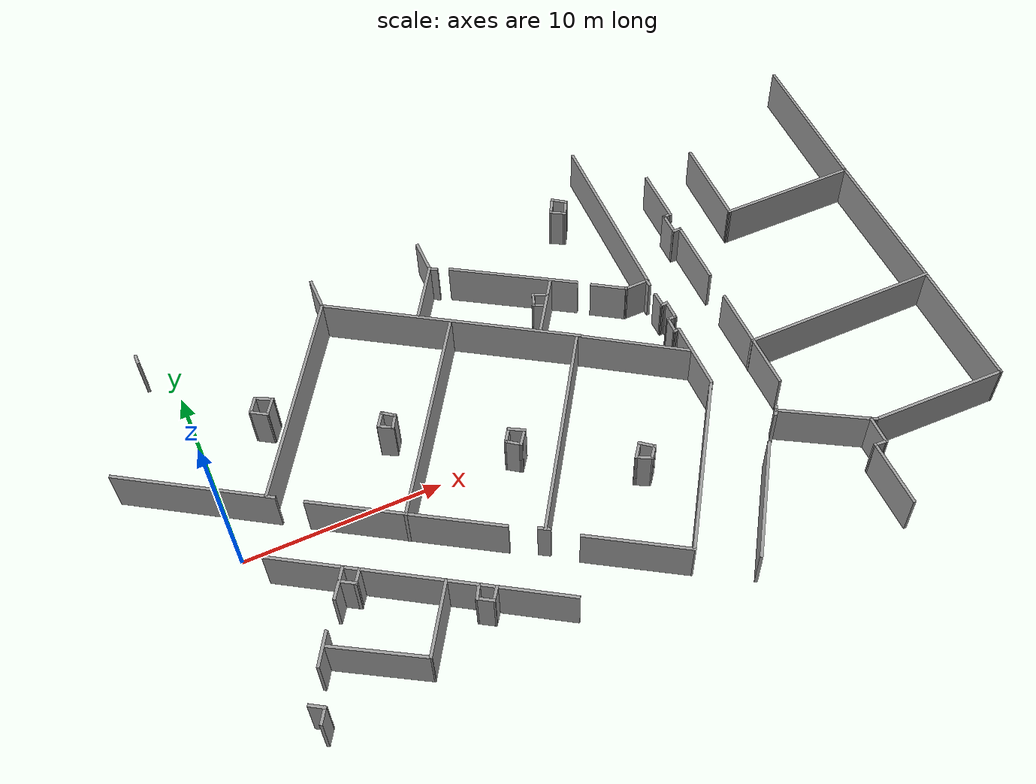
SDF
<sdf version="1.7">
 <model name="HopperFloorGround_Full">
  <pose>0.395792 0.11413 0 0 -0 0</pose>
  <link name="Wall_166">
   <collision name="Wall_166_Collision">
    <geometry><box><size>14.443 0.15 2.5</size></box></geometry>
    <pose>0 0 1.25 0 -0 0</pose>
   </collision>
   <visual name="Wall_166_Visual">
    <pose>0 0 1.25 0 -0 0</pose>
    <geometry><box><size>14.443 0.15 2.5</size></box></geometry>
    <material>
     <script><uri>file://media/materials/scripts/gazebo.material</uri><name>Gazebo/Grey</name></script>
     <ambient>1 1 1 1</ambient>
    </material>
    <meta><layer>0</layer></meta>
   </visual>
   <pose>6.60464 -5.5119 0 0 -0 -0.570014</pose>
  </link>
  <link name="Wall_168">
   <collision name="Wall_168_Collision">
    <geometry><box><size>1.67737 0.15 2.5</size></box></geometry>
    <pose>0 0 1.25 0 -0 0</pose>
   </collision>
   <visual name="Wall_168_Visual">
    <pose>0 0 1.25 0 -0 0</pose>
    <geometry><box><size>1.67737 0.15 2.5</size></box></geometry>
    <material>
     <script><uri>file://media/materials/scripts/gazebo.material</uri><name>Gazebo/Grey</name></script>
     <ambient>1 1 1 1</ambient>
    </material>
    <meta><layer>0</layer></meta>
   </visual>
   <pose>3.20221 -4.27331 0 0 -0 -2.14213</pose>
  </link>
  <link name="Wall_170">
   <collision name="Wall_170_Collision">
    <geometry><box><size>0.850577 0.15 2.5</size></box></geometry>
    <pose>0 0 1.25 0 -0 0</pose>
   </collision>
   <visual name="Wall_170_Visual">
    <pose>0 0 1.25 0 -0 0</pose>
    <geometry><box><size>0.850577 0.15 2.5</size></box></geometry>
    <material>
     <script><uri>file://media/materials/scripts/gazebo.material</uri><name>Gazebo/Grey</name></script>
     <ambient>1 1 1 1</ambient>
    </material>
    <meta><layer>0</layer></meta>
   </visual>
   <pose>4.09227 -4.31899 0 0 -0 -2.16423</pose>
  </link>
  <link name="Wall_171">
   <collision name="Wall_171_Collision">
    <geometry><box><size>0.905243 0.15 2.5</size></box></geometry>
    <pose>0 0 1.25 0 -0 0</pose>
   </collision>
   <visual name="Wall_171_Visual">
    <pose>0 0 1.25 0 -0 0</pose>
    <geometry><box><size>0.905243 0.15 2.5</size></box></geometry>
    <material>
     <script><uri>file://media/materials/scripts/gazebo.material</uri><name>Gazebo/Grey</name></script>
     <ambient>1 1 1 1</ambient>
    </material>
    <meta><layer>0</layer></meta>
   </visual>
   <pose>3.59044 -4.4109 0 0 -0 2.58813</pose>
  </link>
  <link name="Wall_176">
   <collision name="Wall_176_Collision">
    <geometry><box><size>3.85464 0.15 2.5</size></box></geometry>
    <pose>0 0 1.25 0 -0 0</pose>
   </collision>
   <visual name="Wall_176_Visual">
    <pose>0 0 1.25 0 -0 0</pose>
    <geometry><box><size>3.85464 0.15 2.5</size></box></geometry>
    <material>
     <script><uri>file://media/materials/scripts/gazebo.material</uri><name>Gazebo/Grey</name></script>
     <ambient>1 1 1 1</ambient>
    </material>
    <meta><layer>0</layer></meta>
   </visual>
   <pose>6.61117 -7.72263 0 0 -0 -2.13246</pose>
  </link>
  <link name="Wall_177">
   <collision name="Wall_177_Collision">
    <geometry><box><size>4.87161 0.15 2.5</size></box></geometry>
    <pose>0 0 1.25 0 -0 0</pose>
   </collision>
   <visual name="Wall_177_Visual">
    <pose>0 0 1.25 0 -0 0</pose>
    <geometry><box><size>4.87161 0.15 2.5</size></box></geometry>
    <material>
     <script><uri>file://media/materials/scripts/gazebo.material</uri><name>Gazebo/Grey</name></script>
     <ambient>1 1 1 1</ambient>
    </material>
    <meta><layer>0</layer></meta>
   </visual>
   <pose>3.60568 -8.06677 0 0 -0 2.59673</pose>
  </link>
  <link name="Wall_179">
   <collision name="Wall_179_Collision">
    <geometry><box><size>1.77632 0.15 2.5</size></box></geometry>
    <pose>0 0 1.25 0 -0 0</pose>
   </collision>
   <visual name="Wall_179_Visual">
    <pose>0 0 1.25 0 -0 0</pose>
    <geometry><box><size>1.77632 0.15 2.5</size></box></geometry>
    <material>
     <script><uri>file://media/materials/scripts/gazebo.material</uri><name>Gazebo/Grey</name></script>
     <ambient>1 1 1 1</ambient>
    </material>
    <meta><layer>0</layer></meta>
   </visual>
   <pose>1.50261 -6.95788 0 0 -0 -2.11444</pose>
  </link>
  <link name="Wall_184">
   <collision name="Wall_184_Collision">
    <geometry><box><size>0.83743 0.15 2.5</size></box></geometry>
    <pose>0 0 1.25 0 -0 0</pose>
   </collision>
   <visual name="Wall_184_Visual">
    <pose>0 0 1.25 0 -0 0</pose>
    <geometry><box><size>0.83743 0.15 2.5</size></box></geometry>
    <material>
     <script><uri>file://media/materials/scripts/gazebo.material</uri><name>Gazebo/Grey</name></script>
     <ambient>1 1 1 1</ambient>
    </material>
    <meta><layer>0</layer></meta>
   </visual>
   <pose>0.439595 -9.35156 0 0 -0 -0.563316</pose>
  </link>
  <link name="Wall_185">
   <collision name="Wall_185_Collision">
    <geometry><box><size>0.871469 0.15 2.5</size></box></geometry>
    <pose>0 0 1.25 0 -0 0</pose>
   </collision>
   <visual name="Wall_185_Visual">
    <pose>0 0 1.25 0 -0 0</pose>
    <geometry><box><size>0.871469 0.15 2.5</size></box></geometry>
    <material>
     <script><uri>file://media/materials/scripts/gazebo.material</uri><name>Gazebo/Grey</name></script>
     <ambient>1 1 1 1</ambient>
    </material>
    <meta><layer>0</layer></meta>
   </visual>
   <pose>0.539013 -9.84101 0 0 -0 -2.1294</pose>
  </link>
  <link name="Wall_200">
   <collision name="Wall_200_Collision">
    <geometry><box><size>0.835083 0.15 2.5</size></box></geometry>
    <pose>0 0 1.25 0 -0 0</pose>
   </collision>
   <visual name="Wall_200_Visual">
    <pose>0 0 1.25 0 -0 0</pose>
    <geometry><box><size>0.835083 0.15 2.5</size></box></geometry>
    <material>
     <script><uri>file://media/materials/scripts/gazebo.material</uri><name>Gazebo/Grey</name></script>
     <ambient>1 1 1 1</ambient>
    </material>
    <meta><layer>0</layer></meta>
   </visual>
   <pose>8.6848 -7.24916 0 0 -0 -2.08039</pose>
  </link>
  <link name="Wall_201">
   <collision name="Wall_201_Collision">
    <geometry><box><size>0.901419 0.15 2.5</size></box></geometry>
    <pose>0 0 1.25 0 -0 0</pose>
   </collision>
   <visual name="Wall_201_Visual">
    <pose>0 0 1.25 0 -0 0</pose>
    <geometry><box><size>0.901419 0.15 2.5</size></box></geometry>
    <material>
     <script><uri>file://media/materials/scripts/gazebo.material</uri><name>Gazebo/Grey</name></script>
     <ambient>1 1 1 1</ambient>
    </material>
    <meta><layer>0</layer></meta>
   </visual>
   <pose>8.83431 -7.75046 0 0 -0 -0.568525</pose>
  </link>
  <link name="Wall_202">
   <collision name="Wall_202_Collision">
    <geometry><box><size>0.833048 0.15 2.5</size></box></geometry>
    <pose>0 0 1.25 0 -0 0</pose>
   </collision>
   <visual name="Wall_202_Visual">
    <pose>0 0 1.25 0 -0 0</pose>
    <geometry><box><size>0.833048 0.15 2.5</size></box></geometry>
    <material>
     <script><uri>file://media/materials/scripts/gazebo.material</uri><name>Gazebo/Grey</name></script>
     <ambient>1 1 1 1</ambient>
    </material>
    <meta><layer>0</layer></meta>
   </visual>
   <pose>9.3444 -7.6713 0 0 -0 0.968509</pose>
  </link>
  <link name="Wall_266">
   <collision name="Wall_266_Collision">
    <geometry><box><size>0.825407 0.15 2.5</size></box></geometry>
    <pose>0 0 1.25 0 -0 0</pose>
   </collision>
   <visual name="Wall_266_Visual">
    <pose>0 0 1.25 0 -0 0</pose>
    <geometry><box><size>0.825407 0.15 2.5</size></box></geometry>
    <material>
     <script><uri>file://media/materials/scripts/gazebo.material</uri><name>Gazebo/Grey</name></script>
     <ambient>1 1 1 1</ambient>
    </material>
    <meta><layer>0</layer></meta>
   </visual>
   <pose>8.02918 2.5641 0 0 -0 -0.524796</pose>
  </link>
  <link name="Wall_267">
   <collision name="Wall_267_Collision">
    <geometry><box><size>0.825407 0.15 2.5</size></box></geometry>
    <pose>0 0 1.25 0 -0 0</pose>
   </collision>
   <visual name="Wall_267_Visual">
    <pose>0 0 1.25 0 -0 0</pose>
    <geometry><box><size>0.825407 0.15 2.5</size></box></geometry>
    <material>
     <script><uri>file://media/materials/scripts/gazebo.material</uri><name>Gazebo/Grey</name></script>
     <ambient>1 1 1 1</ambient>
    </material>
    <meta><layer>0</layer></meta>
   </visual>
   <pose>8.49064 2.68716 0 0 -0 1.046</pose>
  </link>
  <link name="Wall_268">
   <collision name="Wall_268_Collision">
    <geometry><box><size>0.808377 0.15 2.5</size></box></geometry>
    <pose>0 0 1.25 0 -0 0</pose>
   </collision>
   <visual name="Wall_268_Visual">
    <pose>0 0 1.25 0 -0 0</pose>
    <geometry><box><size>0.808377 0.15 2.5</size></box></geometry>
    <material>
     <script><uri>file://media/materials/scripts/gazebo.material</uri><name>Gazebo/Grey</name></script>
     <ambient>1 1 1 1</ambient>
    </material>
    <meta><layer>0</layer></meta>
   </visual>
   <pose>8.39835 3.17938 0 0 -0 2.48875</pose>
  </link>
  <link name="Wall_269">
   <collision name="Wall_269_Collision">
    <geometry><box><size>0.883834 0.15 2.5</size></box></geometry>
    <pose>0 0 1.25 0 -0 0</pose>
   </collision>
   <visual name="Wall_269_Visual">
    <pose>0 0 1.25 0 -0 0</pose>
    <geometry><box><size>0.883834 0.15 2.5</size></box></geometry>
    <material>
     <script><uri>file://media/materials/scripts/gazebo.material</uri><name>Gazebo/Grey</name></script>
     <ambient>1 1 1 1</ambient>
    </material>
    <meta><layer>0</layer></meta>
   </visual>
   <pose>7.93689 3.0717 0 0 -0 -2.14717</pose>
  </link>
  <link name="Wall_271">
   <collision name="Wall_271_Collision">
    <geometry><box><size>9.55491 0.15 2.5</size></box></geometry>
    <pose>0 0 1.25 0 -0 0</pose>
   </collision>
   <visual name="Wall_271_Visual">
    <pose>0 0 1.25 0 -0 0</pose>
    <geometry><box><size>9.55491 0.15 2.5</size></box></geometry>
    <material>
     <script><uri>file://media/materials/scripts/gazebo.material</uri><name>Gazebo/Grey</name></script>
     <ambient>1 1 1 1</ambient>
    </material>
    <meta><layer>0</layer></meta>
   </visual>
   <pose>7.18317 -2.25046 0 0 -0 -0.566227</pose>
  </link>
  <link name="Wall_273">
   <collision name="Wall_273_Collision">
    <geometry><box><size>0.619591 0.15 2.5</size></box></geometry>
    <pose>0 0 1.25 0 -0 0</pose>
   </collision>
   <visual name="Wall_273_Visual">
    <pose>0 0 1.25 0 -0 0</pose>
    <geometry><box><size>0.619591 0.15 2.5</size></box></geometry>
    <material>
     <script><uri>file://media/materials/scripts/gazebo.material</uri><name>Gazebo/Grey</name></script>
     <ambient>1 1 1 1</ambient>
    </material>
    <meta><layer>0</layer></meta>
   </visual>
   <pose>12.6438 -5.60373 0 0 -0 -0.551655</pose>
  </link>
  <link name="Wall_276">
   <collision name="Wall_276_Collision">
    <geometry><box><size>0.883834 0.15 2.5</size></box></geometry>
    <pose>0 0 1.25 0 -0 0</pose>
   </collision>
   <visual name="Wall_276_Visual">
    <pose>0 0 1.25 0 -0 0</pose>
    <geometry><box><size>0.883834 0.15 2.5</size></box></geometry>
    <material>
     <script><uri>file://media/materials/scripts/gazebo.material</uri><name>Gazebo/Grey</name></script>
     <ambient>1 1 1 1</ambient>
    </material>
    <meta><layer>0</layer></meta>
   </visual>
   <pose>13.1094 -0.277168 0 0 -0 -2.14717</pose>
  </link>
  <link name="Wall_277">
   <collision name="Wall_277_Collision">
    <geometry><box><size>0.876055 0.15 2.5</size></box></geometry>
    <pose>0 0 1.25 0 -0 0</pose>
   </collision>
   <visual name="Wall_277_Visual">
    <pose>0 0 1.25 0 -0 0</pose>
    <geometry><box><size>0.876055 0.15 2.5</size></box></geometry>
    <material>
     <script><uri>file://media/materials/scripts/gazebo.material</uri><name>Gazebo/Grey</name></script>
     <ambient>1 1 1 1</ambient>
    </material>
    <meta><layer>0</layer></meta>
   </visual>
   <pose>13.2017 -0.800155 0 0 -0 -0.635027</pose>
  </link>
  <link name="Wall_278">
   <collision name="Wall_278_Collision">
    <geometry><box><size>0.943924 0.15 2.5</size></box></geometry>
    <pose>0 0 1.25 0 -0 0</pose>
   </collision>
   <visual name="Wall_278_Visual">
    <pose>0 0 1.25 0 -0 0</pose>
    <geometry><box><size>0.943924 0.15 2.5</size></box></geometry>
    <material>
     <script><uri>file://media/materials/scripts/gazebo.material</uri><name>Gazebo/Grey</name></script>
     <ambient>1 1 1 1</ambient>
    </material>
    <meta><layer>0</layer></meta>
   </visual>
   <pose>13.7247 -0.692481 0 0 -0 0.950547</pose>
  </link>
  <link name="Wall_279">
   <collision name="Wall_279_Collision">
    <geometry><box><size>0.89408 0.15 2.5</size></box></geometry>
    <pose>0 0 1.25 0 -0 0</pose>
   </collision>
   <visual name="Wall_279_Visual">
    <pose>0 0 1.25 0 -0 0</pose>
    <geometry><box><size>0.89408 0.15 2.5</size></box></geometry>
    <material>
     <script><uri>file://media/materials/scripts/gazebo.material</uri><name>Gazebo/Grey</name></script>
     <ambient>1 1 1 1</ambient>
    </material>
    <meta><layer>0</layer></meta>
   </visual>
   <pose>13.6324 -0.184876 0 0 -0 2.62245</pose>
  </link>
  <link name="Wall_281">
   <collision name="Wall_281_Collision">
    <geometry><box><size>0.876055 0.15 2.5</size></box></geometry>
    <pose>0 0 1.25 0 -0 0</pose>
   </collision>
   <visual name="Wall_281_Visual">
    <pose>0 0 1.25 0 -0 0</pose>
    <geometry><box><size>0.876055 0.15 2.5</size></box></geometry>
    <material>
     <script><uri>file://media/materials/scripts/gazebo.material</uri><name>Gazebo/Grey</name></script>
     <ambient>1 1 1 1</ambient>
    </material>
    <meta><layer>0</layer></meta>
   </visual>
   <pose>18.3547 -3.64582 0 0 -0 -2.20582</pose>
  </link>
  <link name="Wall_282">
   <collision name="Wall_282_Collision">
    <geometry><box><size>0.879307 0.15 2.5</size></box></geometry>
    <pose>0 0 1.25 0 -0 0</pose>
   </collision>
   <visual name="Wall_282_Visual">
    <pose>0 0 1.25 0 -0 0</pose>
    <geometry><box><size>0.879307 0.15 2.5</size></box></geometry>
    <material>
     <script><uri>file://media/materials/scripts/gazebo.material</uri><name>Gazebo/Grey</name></script>
     <ambient>1 1 1 1</ambient>
    </material>
    <meta><layer>0</layer></meta>
   </visual>
   <pose>18.4624 -4.10728 0 0 -0 -0.482513</pose>
  </link>
  <link name="Wall_283">
   <collision name="Wall_283_Collision">
    <geometry><box><size>0.808377 0.15 2.5</size></box></geometry>
    <pose>0 0 1.25 0 -0 0</pose>
   </collision>
   <visual name="Wall_283_Visual">
    <pose>0 0 1.25 0 -0 0</pose>
    <geometry><box><size>0.808377 0.15 2.5</size></box></geometry>
    <material>
     <script><uri>file://media/materials/scripts/gazebo.material</uri><name>Gazebo/Grey</name></script>
     <ambient>1 1 1 1</ambient>
    </material>
    <meta><layer>0</layer></meta>
   </visual>
   <pose>18.9854 -4.01499 0 0 -0 0.91795</pose>
  </link>
  <link name="Wall_284">
   <collision name="Wall_284_Collision">
    <geometry><box><size>0.894716 0.15 2.5</size></box></geometry>
    <pose>0 0 1.25 0 -0 0</pose>
   </collision>
   <visual name="Wall_284_Visual">
    <pose>0 0 1.25 0 -0 0</pose>
    <geometry><box><size>0.894716 0.15 2.5</size></box></geometry>
    <material>
     <script><uri>file://media/materials/scripts/gazebo.material</uri><name>Gazebo/Grey</name></script>
     <ambient>1 1 1 1</ambient>
    </material>
    <meta><layer>0</layer></meta>
   </visual>
   <pose>18.8931 -3.52276 0 0 -0 2.4733</pose>
  </link>
  <link name="Wall_341">
   <collision name="Wall_341_Collision">
    <geometry><box><size>0.556853 0.15 2.5</size></box></geometry>
    <pose>0 0 1.25 0 -0 0</pose>
   </collision>
   <visual name="Wall_341_Visual">
    <pose>0 0 1.25 0 -0 0</pose>
    <geometry><box><size>0.556853 0.15 2.5</size></box></geometry>
    <material>
     <script><uri>file://media/materials/scripts/gazebo.material</uri><name>Gazebo/Grey</name></script>
     <ambient>1 1 1 1</ambient>
    </material>
    <meta><layer>0</layer></meta>
   </visual>
   <pose>-1.7167 11.358 0 0 -0 -1.5708</pose>
  </link>
  <link name="Wall_351">
   <collision name="Wall_351_Collision">
    <geometry><box><size>1.79826 0.15 2.5</size></box></geometry>
    <pose>0 0 1.25 0 -0 0</pose>
   </collision>
   <visual name="Wall_351_Visual">
    <pose>0 0 1.25 0 -0 0</pose>
    <geometry><box><size>1.79826 0.15 2.5</size></box></geometry>
    <material>
     <script><uri>file://media/materials/scripts/gazebo.material</uri><name>Gazebo/Grey</name></script>
     <ambient>1 1 1 1</ambient>
    </material>
    <meta><layer>0</layer></meta>
   </visual>
   <pose>7.66126 11.5106 0 0 -0 -1.5708</pose>
  </link>
  <link name="Wall_352">
   <collision name="Wall_352_Collision">
    <geometry><box><size>11.2837 0.15 2.5</size></box></geometry>
    <pose>0 0 1.25 0 -0 0</pose>
   </collision>
   <visual name="Wall_352_Visual">
    <pose>0 0 1.25 0 -0 0</pose>
    <geometry><box><size>11.2837 0.15 2.5</size></box></geometry>
    <material>
     <script><uri>file://media/materials/scripts/gazebo.material</uri><name>Gazebo/Grey</name></script>
     <ambient>1 1 1 1</ambient>
    </material>
    <meta><layer>0</layer></meta>
   </visual>
   <pose>4.66072 5.9977 0 0 -0 -2.14005</pose>
  </link>
  <link name="Wall_354">
   <collision name="Wall_354_Collision">
    <geometry><box><size>7.94811 0.15 2.5</size></box></geometry>
    <pose>0 0 1.25 0 -0 0</pose>
   </collision>
   <visual name="Wall_354_Visual">
    <pose>0 0 1.25 0 -0 0</pose>
    <geometry><box><size>7.94811 0.15 2.5</size></box></geometry>
    <material>
     <script><uri>file://media/materials/scripts/gazebo.material</uri><name>Gazebo/Grey</name></script>
     <ambient>1 1 1 1</ambient>
    </material>
    <meta><layer>0</layer></meta>
   </visual>
   <pose>-1.30985 3.22092 0 0 -0 -0.573532</pose>
  </link>
  <link name="Wall_356">
   <collision name="Wall_356_Collision">
    <geometry><box><size>0.945707 0.15 2.5</size></box></geometry>
    <pose>0 0 1.25 0 -0 0</pose>
   </collision>
   <visual name="Wall_356_Visual">
    <pose>0 0 1.25 0 -0 0</pose>
    <geometry><box><size>0.945707 0.15 2.5</size></box></geometry>
    <material>
     <script><uri>file://media/materials/scripts/gazebo.material</uri><name>Gazebo/Grey</name></script>
     <ambient>1 1 1 1</ambient>
    </material>
    <meta><layer>0</layer></meta>
   </visual>
   <pose>2.6468 6.3842 0 0 -0 -2.13753</pose>
  </link>
  <link name="Wall_357">
   <collision name="Wall_357_Collision">
    <geometry><box><size>0.973815 0.15 2.5</size></box></geometry>
    <pose>0 0 1.25 0 -0 0</pose>
   </collision>
   <visual name="Wall_357_Visual">
    <pose>0 0 1.25 0 -0 0</pose>
    <geometry><box><size>0.973815 0.15 2.5</size></box></geometry>
    <material>
     <script><uri>file://media/materials/scripts/gazebo.material</uri><name>Gazebo/Grey</name></script>
     <ambient>1 1 1 1</ambient>
    </material>
    <meta><layer>0</layer></meta>
   </visual>
   <pose>2.77902 5.82478 0 0 -0 -0.574305</pose>
  </link>
  <link name="Wall_358">
   <collision name="Wall_358_Collision">
    <geometry><box><size>1.03016 0.15 2.5</size></box></geometry>
    <pose>0 0 1.25 0 -0 0</pose>
   </collision>
   <visual name="Wall_358_Visual">
    <pose>0 0 1.25 0 -0 0</pose>
    <geometry><box><size>1.03016 0.15 2.5</size></box></geometry>
    <material>
     <script><uri>file://media/materials/scripts/gazebo.material</uri><name>Gazebo/Grey</name></script>
     <ambient>1 1 1 1</ambient>
    </material>
    <meta><layer>0</layer></meta>
   </visual>
   <pose>3.36896 5.96718 0 0 -0 0.982794</pose>
  </link>
  <link name="Wall_359">
   <collision name="Wall_359_Collision">
    <geometry><box><size>0.996117 0.15 2.5</size></box></geometry>
    <pose>0 0 1.25 0 -0 0</pose>
   </collision>
   <visual name="Wall_359_Visual">
    <pose>0 0 1.25 0 -0 0</pose>
    <geometry><box><size>0.996117 0.15 2.5</size></box></geometry>
    <material>
     <script><uri>file://media/materials/scripts/gazebo.material</uri><name>Gazebo/Grey</name></script>
     <ambient>1 1 1 1</ambient>
    </material>
    <meta><layer>0</layer></meta>
   </visual>
   <pose>3.23673 6.5266 0 0 -0 2.66719</pose>
  </link>
  <link name="Wall_365">
   <collision name="Wall_365_Collision">
    <geometry><box><size>13.2638 0.15 2.5</size></box></geometry>
    <pose>0 0 1.25 0 -0 0</pose>
   </collision>
   <visual name="Wall_365_Visual">
    <pose>0 0 1.25 0 -0 0</pose>
    <geometry><box><size>13.2638 0.15 2.5</size></box></geometry>
    <material>
     <script><uri>file://media/materials/scripts/gazebo.material</uri><name>Gazebo/Grey</name></script>
     <ambient>1 1 1 1</ambient>
    </material>
    <meta><layer>0</layer></meta>
   </visual>
   <pose>13.1741 7.13688 0 0 -0 -0.572083</pose>
  </link>
  <link name="Wall_367">
   <collision name="Wall_367_Collision">
    <geometry><box><size>1.83844 0.15 2.5</size></box></geometry>
    <pose>0 0 1.25 0 -0 0</pose>
   </collision>
   <visual name="Wall_367_Visual">
    <pose>0 0 1.25 0 -0 0</pose>
    <geometry><box><size>1.83844 0.15 2.5</size></box></geometry>
    <material>
     <script><uri>file://media/materials/scripts/gazebo.material</uri><name>Gazebo/Grey</name></script>
     <ambient>1 1 1 1</ambient>
    </material>
    <meta><layer>0</layer></meta>
   </visual>
   <pose>13.4793 11.5106 0 0 -0 -1.5708</pose>
  </link>
  <link name="Wall_368">
   <collision name="Wall_368_Collision">
    <geometry><box><size>3.20336 0.15 2.5</size></box></geometry>
    <pose>0 0 1.25 0 -0 0</pose>
   </collision>
   <visual name="Wall_368_Visual">
    <pose>0 0 1.25 0 -0 0</pose>
    <geometry><box><size>3.20336 0.15 2.5</size></box></geometry>
    <material>
     <script><uri>file://media/materials/scripts/gazebo.material</uri><name>Gazebo/Grey</name></script>
     <ambient>1 1 1 1</ambient>
    </material>
    <meta><layer>0</layer></meta>
   </visual>
   <pose>12.6656 9.37458 0 0 -0 -2.13293</pose>
  </link>
  <link name="Wall_370">
   <collision name="Wall_370_Collision">
    <geometry><box><size>0.516732 0.15 2.5</size></box></geometry>
    <pose>0 0 1.25 0 -0 0</pose>
   </collision>
   <visual name="Wall_370_Visual">
    <pose>0 0 1.25 0 -0 0</pose>
    <geometry><box><size>0.516732 0.15 2.5</size></box></geometry>
    <material>
     <script><uri>file://media/materials/scripts/gazebo.material</uri><name>Gazebo/Grey</name></script>
     <ambient>1 1 1 1</ambient>
    </material>
    <meta><layer>0</layer></meta>
   </visual>
   <pose>13.6318 10.5646 0 0 -0 -0.588003</pose>
  </link>
  <link name="Wall_372">
   <collision name="Wall_372_Collision">
    <geometry><box><size>6.68582 0.15 2.5</size></box></geometry>
    <pose>0 0 1.25 0 -0 0</pose>
   </collision>
   <visual name="Wall_372_Visual">
    <pose>0 0 1.25 0 -0 0</pose>
    <geometry><box><size>6.68582 0.15 2.5</size></box></geometry>
    <material>
     <script><uri>file://media/materials/scripts/gazebo.material</uri><name>Gazebo/Grey</name></script>
     <ambient>1 1 1 1</ambient>
    </material>
    <meta><layer>0</layer></meta>
   </visual>
   <pose>17.202 8.43881 0 0 -0 -0.561239</pose>
  </link>
  <link name="Wall_374">
   <collision name="Wall_374_Collision">
    <geometry><box><size>3.38301 0.15 2.5</size></box></geometry>
    <pose>0 0 1.25 0 -0 0</pose>
   </collision>
   <visual name="Wall_374_Visual">
    <pose>0 0 1.25 0 -0 0</pose>
    <geometry><box><size>3.38301 0.15 2.5</size></box></geometry>
    <material>
     <script><uri>file://media/materials/scripts/gazebo.material</uri><name>Gazebo/Grey</name></script>
     <ambient>1 1 1 1</ambient>
    </material>
    <meta><layer>0</layer></meta>
   </visual>
   <pose>17.9445 6.05872 0 0 -0 0.99152</pose>
  </link>
  <link name="Wall_376">
   <collision name="Wall_376_Collision">
    <geometry><box><size>0.832313 0.15 2.5</size></box></geometry>
    <pose>0 0 1.25 0 -0 0</pose>
   </collision>
   <visual name="Wall_376_Visual">
    <pose>0 0 1.25 0 -0 0</pose>
    <geometry><box><size>0.832313 0.15 2.5</size></box></geometry>
    <material>
     <script><uri>file://media/materials/scripts/gazebo.material</uri><name>Gazebo/Grey</name></script>
     <ambient>1 1 1 1</ambient>
    </material>
    <meta><layer>0</layer></meta>
   </visual>
   <pose>17.9546 6.75037 0 0 -0 2.67794</pose>
  </link>
  <link name="Wall_377">
   <collision name="Wall_377_Collision">
    <geometry><box><size>0.815115 0.15 2.5</size></box></geometry>
    <pose>0 0 1.25 0 -0 0</pose>
   </collision>
   <visual name="Wall_377_Visual">
    <pose>0 0 1.25 0 -0 0</pose>
    <geometry><box><size>0.815115 0.15 2.5</size></box></geometry>
    <material>
     <script><uri>file://media/materials/scripts/gazebo.material</uri><name>Gazebo/Grey</name></script>
     <ambient>1 1 1 1</ambient>
    </material>
    <meta><layer>0</layer></meta>
   </visual>
   <pose>17.5173 6.5978 0 0 -0 -1.9797</pose>
  </link>
  <link name="Wall_378">
   <collision name="Wall_378_Collision">
    <geometry><box><size>0.705246 0.15 2.5</size></box></geometry>
    <pose>0 0 1.25 0 -0 0</pose>
   </collision>
   <visual name="Wall_378_Visual">
    <pose>0 0 1.25 0 -0 0</pose>
    <geometry><box><size>0.705246 0.15 2.5</size></box></geometry>
    <material>
     <script><uri>file://media/materials/scripts/gazebo.material</uri><name>Gazebo/Grey</name></script>
     <ambient>1 1 1 1</ambient>
    </material>
    <meta><layer>0</layer></meta>
   </visual>
   <pose>17.6292 6.16044 0 0 -0 -0.496423</pose>
  </link>
  <link name="Wall_380">
   <collision name="Wall_380_Collision">
    <geometry><box><size>1.91618 0.15 2.5</size></box></geometry>
    <pose>0 0 1.25 0 -0 0</pose>
   </collision>
   <visual name="Wall_380_Visual">
    <pose>0 0 1.25 0 -0 0</pose>
    <geometry><box><size>1.91618 0.15 2.5</size></box></geometry>
    <material>
     <script><uri>file://media/materials/scripts/gazebo.material</uri><name>Gazebo/Grey</name></script>
     <ambient>1 1 1 1</ambient>
    </material>
    <meta><layer>0</layer></meta>
   </visual>
   <pose>21.362 5.75358 0 0 -0 -0.57203</pose>
  </link>
  <link name="Wall_381">
   <collision name="Wall_381_Collision">
    <geometry><box><size>1.33005 0.15 2.5</size></box></geometry>
    <pose>0 0 1.25 0 -0 0</pose>
   </collision>
   <visual name="Wall_381_Visual">
    <pose>0 0 1.25 0 -0 0</pose>
    <geometry><box><size>1.33005 0.15 2.5</size></box></geometry>
    <material>
     <script><uri>file://media/materials/scripts/gazebo.material</uri><name>Gazebo/Grey</name></script>
     <ambient>1 1 1 1</ambient>
    </material>
    <meta><layer>0</layer></meta>
   </visual>
   <pose>22.6945 5.2857 0 0 -0 0.01724</pose>
  </link>
  <link name="Wall_382">
   <collision name="Wall_382_Collision">
    <geometry><box><size>0.435523 0.15 2.5</size></box></geometry>
    <pose>0 0 1.25 0 -0 0</pose>
   </collision>
   <visual name="Wall_382_Visual">
    <pose>0 0 1.25 0 -0 0</pose>
    <geometry><box><size>0.435523 0.15 2.5</size></box></geometry>
    <material>
     <script><uri>file://media/materials/scripts/gazebo.material</uri><name>Gazebo/Grey</name></script>
     <ambient>1 1 1 1</ambient>
    </material>
    <meta><layer>0</layer></meta>
   </visual>
   <pose>23.2844 5.15348 0 0 -0 -1.5708</pose>
  </link>
  <link name="Wall_384">
   <collision name="Wall_384_Collision">
    <geometry><box><size>0.882618 0.15 2.5</size></box></geometry>
    <pose>0 0 1.25 0 -0 0</pose>
   </collision>
   <visual name="Wall_384_Visual">
    <pose>0 0 1.25 0 -0 0</pose>
    <geometry><box><size>0.882618 0.15 2.5</size></box></geometry>
    <material>
     <script><uri>file://media/materials/scripts/gazebo.material</uri><name>Gazebo/Grey</name></script>
     <ambient>1 1 1 1</ambient>
    </material>
    <meta><layer>0</layer></meta>
   </visual>
   <pose>23.2946 3.93292 0 0 -0 -1.54303</pose>
  </link>
  <link name="Wall_385">
   <collision name="Wall_385_Collision">
    <geometry><box><size>0.394958 0.15 2.5</size></box></geometry>
    <pose>0 0 1.25 0 -0 0</pose>
   </collision>
   <visual name="Wall_385_Visual">
    <pose>0 0 1.25 0 -0 0</pose>
    <geometry><box><size>0.394958 0.15 2.5</size></box></geometry>
    <material>
     <script><uri>file://media/materials/scripts/gazebo.material</uri><name>Gazebo/Grey</name></script>
     <ambient>1 1 1 1</ambient>
    </material>
    <meta><layer>0</layer></meta>
   </visual>
   <pose>23.4268 3.57692 0 0 -0 0.083141</pose>
  </link>
  <link name="Wall_386">
   <collision name="Wall_386_Collision">
    <geometry><box><size>1.1061 0.15 2.5</size></box></geometry>
    <pose>0 0 1.25 0 -0 0</pose>
   </collision>
   <visual name="Wall_386_Visual">
    <pose>0 0 1.25 0 -0 0</pose>
    <geometry><box><size>1.1061 0.15 2.5</size></box></geometry>
    <material>
     <script><uri>file://media/materials/scripts/gazebo.material</uri><name>Gazebo/Grey</name></script>
     <ambient>1 1 1 1</ambient>
    </material>
    <meta><layer>0</layer></meta>
   </visual>
   <pose>23.5489 3.10904 0 0 -0 -1.5708</pose>
  </link>
  <link name="Wall_387">
   <collision name="Wall_387_Collision">
    <geometry><box><size>0.537045 0.15 2.5</size></box></geometry>
    <pose>0 0 1.25 0 -0 0</pose>
   </collision>
   <visual name="Wall_387_Visual">
    <pose>0 0 1.25 0 -0 0</pose>
    <geometry><box><size>0.537045 0.15 2.5</size></box></geometry>
    <material>
     <script><uri>file://media/materials/scripts/gazebo.material</uri><name>Gazebo/Grey</name></script>
     <ambient>1 1 1 1</ambient>
    </material>
    <meta><layer>0</layer></meta>
   </visual>
   <pose>23.3556 2.64116 0 0 -0 3.08901</pose>
  </link>
  <link name="Wall_388">
   <collision name="Wall_388_Collision">
    <geometry><box><size>0.96396 0.15 2.5</size></box></geometry>
    <pose>0 0 1.25 0 -0 0</pose>
   </collision>
   <visual name="Wall_388_Visual">
    <pose>0 0 1.25 0 -0 0</pose>
    <geometry><box><size>0.96396 0.15 2.5</size></box></geometry>
    <material>
     <script><uri>file://media/materials/scripts/gazebo.material</uri><name>Gazebo/Grey</name></script>
     <ambient>1 1 1 1</ambient>
    </material>
    <meta><layer>0</layer></meta>
   </visual>
   <pose>23.1522 2.24447 0 0 -0 -1.59579</pose>
  </link>
  <link name="Wall_389">
   <collision name="Wall_389_Collision">
    <geometry><box><size>0.374692 0.15 2.5</size></box></geometry>
    <pose>0 0 1.25 0 -0 0</pose>
   </collision>
   <visual name="Wall_389_Visual">
    <pose>0 0 1.25 0 -0 0</pose>
    <geometry><box><size>0.374692 0.15 2.5</size></box></geometry>
    <material>
     <script><uri>file://media/materials/scripts/gazebo.material</uri><name>Gazebo/Grey</name></script>
     <ambient>1 1 1 1</ambient>
    </material>
    <meta><layer>0</layer></meta>
   </visual>
   <pose>23.2539 1.84779 0 0 -0 0.09066</pose>
  </link>
  <link name="Wall_390">
   <collision name="Wall_390_Collision">
    <geometry><box><size>3.60831 0.15 2.5</size></box></geometry>
    <pose>0 0 1.25 0 -0 0</pose>
   </collision>
   <visual name="Wall_390_Visual">
    <pose>0 0 1.25 0 -0 0</pose>
    <geometry><box><size>3.60831 0.15 2.5</size></box></geometry>
    <material>
     <script><uri>file://media/materials/scripts/gazebo.material</uri><name>Gazebo/Grey</name></script>
     <ambient>1 1 1 1</ambient>
    </material>
    <meta><layer>0</layer></meta>
   </visual>
   <pose>23.3556 0.128839 0 0 -0 -1.57668</pose>
  </link>
  <link name="Wall_392">
   <collision name="Wall_392_Collision">
    <geometry><box><size>9.38801 0.15 2.5</size></box></geometry>
    <pose>0 0 1.25 0 -0 0</pose>
   </collision>
   <visual name="Wall_392_Visual">
    <pose>0 0 1.25 0 -0 0</pose>
    <geometry><box><size>9.38801 0.15 2.5</size></box></geometry>
    <material>
     <script><uri>file://media/materials/scripts/gazebo.material</uri><name>Gazebo/Grey</name></script>
     <ambient>1 1 1 1</ambient>
    </material>
    <meta><layer>0</layer></meta>
   </visual>
   <pose>20.8636 -5.4959 0 0 -0 -2.13803</pose>
  </link>
  <link name="Wall_393">
   <collision name="Wall_393_Collision">
    <geometry><box><size>5.27998 0.15 2.5</size></box></geometry>
    <pose>0 0 1.25 0 -0 0</pose>
   </collision>
   <visual name="Wall_393_Visual">
    <pose>0 0 1.25 0 -0 0</pose>
    <geometry><box><size>5.27998 0.15 2.5</size></box></geometry>
    <material>
     <script><uri>file://media/materials/scripts/gazebo.material</uri><name>Gazebo/Grey</name></script>
     <ambient>1 1 1 1</ambient>
    </material>
    <meta><layer>0</layer></meta>
   </visual>
   <pose>16.2153 -8.01839 0 0 -0 2.57669</pose>
  </link>
  <link name="Wall_396">
   <collision name="Wall_396_Collision">
    <geometry><box><size>11.1152 0.15 2.5</size></box></geometry>
    <pose>0 0 1.25 0 -0 0</pose>
   </collision>
   <visual name="Wall_396_Visual">
    <pose>0 0 1.25 0 -0 0</pose>
    <geometry><box><size>11.1152 0.15 2.5</size></box></geometry>
    <material>
     <script><uri>file://media/materials/scripts/gazebo.material</uri><name>Gazebo/Grey</name></script>
     <ambient>1 1 1 1</ambient>
    </material>
    <meta><layer>0</layer></meta>
   </visual>
   <pose>15.6254 -1.00018 0 0 -0 1.00492</pose>
  </link>
  <link name="Wall_398">
   <collision name="Wall_398_Collision">
    <geometry><box><size>5.87103 0.15 2.5</size></box></geometry>
    <pose>0 0 1.25 0 -0 0</pose>
   </collision>
   <visual name="Wall_398_Visual">
    <pose>0 0 1.25 0 -0 0</pose>
    <geometry><box><size>5.87103 0.15 2.5</size></box></geometry>
    <material>
     <script><uri>file://media/materials/scripts/gazebo.material</uri><name>Gazebo/Grey</name></script>
     <ambient>1 1 1 1</ambient>
    </material>
    <meta><layer>0</layer></meta>
   </visual>
   <pose>20.945 2.04105 0 0 -0 -0.588003</pose>
  </link>
  <link name="Wall_400">
   <collision name="Wall_400_Collision">
    <geometry><box><size>0.977105 0.15 2.5</size></box></geometry>
    <pose>0 0 1.25 0 -0 0</pose>
   </collision>
   <visual name="Wall_400_Visual">
    <pose>0 0 1.25 0 -0 0</pose>
    <geometry><box><size>0.977105 0.15 2.5</size></box></geometry>
    <material>
     <script><uri>file://media/materials/scripts/gazebo.material</uri><name>Gazebo/Grey</name></script>
     <ambient>1 1 1 1</ambient>
    </material>
    <meta><layer>0</layer></meta>
   </visual>
   <pose>20.918 11.8836 0 0 -0 -2.0724</pose>
  </link>
  <link name="Wall_401">
   <collision name="Wall_401_Collision">
    <geometry><box><size>0.884216 0.15 2.5</size></box></geometry>
    <pose>0 0 1.25 0 -0 0</pose>
   </collision>
   <visual name="Wall_401_Visual">
    <pose>0 0 1.25 0 -0 0</pose>
    <geometry><box><size>0.884216 0.15 2.5</size></box></geometry>
    <material>
     <script><uri>file://media/materials/scripts/gazebo.material</uri><name>Gazebo/Grey</name></script>
     <ambient>1 1 1 1</ambient>
    </material>
    <meta><layer>0</layer></meta>
   </visual>
   <pose>21.035 11.3338 0 0 -0 -0.534955</pose>
  </link>
  <link name="Wall_402">
   <collision name="Wall_402_Collision">
    <geometry><box><size>0.945398 0.15 2.5</size></box></geometry>
    <pose>0 0 1.25 0 -0 0</pose>
   </collision>
   <visual name="Wall_402_Visual">
    <pose>0 0 1.25 0 -0 0</pose>
    <geometry><box><size>0.945398 0.15 2.5</size></box></geometry>
    <material>
     <script><uri>file://media/materials/scripts/gazebo.material</uri><name>Gazebo/Grey</name></script>
     <ambient>1 1 1 1</ambient>
    </material>
    <meta><layer>0</layer></meta>
   </visual>
   <pose>21.538 11.4976 0 0 -0 1.08084</pose>
  </link>
  <link name="Wall_403">
   <collision name="Wall_403_Collision">
    <geometry><box><size>0.870674 0.15 2.5</size></box></geometry>
    <pose>0 0 1.25 0 -0 0</pose>
   </collision>
   <visual name="Wall_403_Visual">
    <pose>0 0 1.25 0 -0 0</pose>
    <geometry><box><size>0.870674 0.15 2.5</size></box></geometry>
    <material>
     <script><uri>file://media/materials/scripts/gazebo.material</uri><name>Gazebo/Grey</name></script>
     <ambient>1 1 1 1</ambient>
    </material>
    <meta><layer>0</layer></meta>
   </visual>
   <pose>21.4327 12.059 0 0 -0 2.51757</pose>
  </link>
  <link name="Wall_406">
   <collision name="Wall_406_Collision">
    <geometry><box><size>9.50835 0.15 2.5</size></box></geometry>
    <pose>0 0 1.25 0 -0 0</pose>
   </collision>
   <visual name="Wall_406_Visual">
    <pose>0 0 1.25 0 -0 0</pose>
    <geometry><box><size>9.50835 0.15 2.5</size></box></geometry>
    <material>
     <script><uri>file://media/materials/scripts/gazebo.material</uri><name>Gazebo/Grey</name></script>
     <ambient>1 1 1 1</ambient>
    </material>
    <meta><layer>0</layer></meta>
   </visual>
   <pose>23.3861 10.0003 0 0 -0 -1.5858</pose>
  </link>
  <link name="Wall_532">
   <collision name="Wall_532_Collision">
    <geometry><box><size>11.2697 0.15 2.5</size></box></geometry>
    <pose>0 0 1.25 0 -0 0</pose>
   </collision>
   <visual name="Wall_532_Visual">
    <pose>0 0 1.25 0 -0 0</pose>
    <geometry><box><size>11.2697 0.15 2.5</size></box></geometry>
    <material>
     <script><uri>file://media/materials/scripts/gazebo.material</uri><name>Gazebo/Grey</name></script>
     <ambient>1 1 1 1</ambient>
    </material>
    <meta><layer>0</layer></meta>
   </visual>
   <pose>10.1885 2.41543 0 0 -0 0.999848</pose>
  </link>
  <link name="Wall_534">
   <collision name="Wall_534_Collision">
    <geometry><box><size>6.20381 0.15 2.5</size></box></geometry>
    <pose>0 0 1.25 0 -0 0</pose>
   </collision>
   <visual name="Wall_534_Visual">
    <pose>0 0 1.25 0 -0 0</pose>
    <geometry><box><size>6.20381 0.15 2.5</size></box></geometry>
    <material>
     <script><uri>file://media/materials/scripts/gazebo.material</uri><name>Gazebo/Grey</name></script>
     <ambient>1 1 1 1</ambient>
    </material>
    <meta><layer>0</layer></meta>
   </visual>
   <pose>22.5855 -8.39139 0 0 -0 1.00391</pose>
  </link>
  <link name="Wall_536">
   <collision name="Wall_536_Collision">
    <geometry><box><size>0.583974 0.15 2.5</size></box></geometry>
    <pose>0 0 1.25 0 -0 0</pose>
   </collision>
   <visual name="Wall_536_Visual">
    <pose>0 0 1.25 0 -0 0</pose>
    <geometry><box><size>0.583974 0.15 2.5</size></box></geometry>
    <material>
     <script><uri>file://media/materials/scripts/gazebo.material</uri><name>Gazebo/Grey</name></script>
     <ambient>1 1 1 1</ambient>
    </material>
    <meta><layer>0</layer></meta>
   </visual>
   <pose>25.3957 -4.38565 0 0 -0 0.99783</pose>
  </link>
  <link name="Wall_538">
   <collision name="Wall_538_Collision">
    <geometry><box><size>5.78737 0.15 2.5</size></box></geometry>
    <pose>0 0 1.25 0 -0 0</pose>
   </collision>
   <visual name="Wall_538_Visual">
    <pose>0 0 1.25 0 -0 0</pose>
    <geometry><box><size>5.78737 0.15 2.5</size></box></geometry>
    <material>
     <script><uri>file://media/materials/scripts/gazebo.material</uri><name>Gazebo/Grey</name></script>
     <ambient>1 1 1 1</ambient>
    </material>
    <meta><layer>0</layer></meta>
   </visual>
   <pose>26.4057 -0.10843 0 0 -0 1.5708</pose>
  </link>
  <link name="Wall_540">
   <collision name="Wall_540_Collision">
    <geometry><box><size>3.5 0.15 2.5</size></box></geometry>
    <pose>0 0 1.25 0 -0 0</pose>
   </collision>
   <visual name="Wall_540_Visual">
    <pose>0 0 1.25 0 -0 0</pose>
    <geometry><box><size>3.5 0.15 2.5</size></box></geometry>
    <material>
     <script><uri>file://media/materials/scripts/gazebo.material</uri><name>Gazebo/Grey</name></script>
     <ambient>1 1 1 1</ambient>
    </material>
    <meta><layer>0</layer></meta>
   </visual>
   <pose>26.3889 5.97437 0 0 -0 1.5708</pose>
  </link>
  <link name="Wall_541">
   <collision name="Wall_541_Collision">
    <geometry><box><size>0.5 0.15 2.5</size></box></geometry>
    <pose>0 0 1.25 0 -0 0</pose>
   </collision>
   <visual name="Wall_541_Visual">
    <pose>0 0 1.25 0 -0 0</pose>
    <geometry><box><size>0.5 0.15 2.5</size></box></geometry>
    <material>
     <script><uri>file://media/materials/scripts/gazebo.material</uri><name>Gazebo/Grey</name></script>
     <ambient>1 1 1 1</ambient>
    </material>
    <meta><layer>0</layer></meta>
   </visual>
   <pose>26.2139 7.64937 0 0 -0 3.14159</pose>
  </link>
  <link name="Wall_542">
   <collision name="Wall_542_Collision">
    <geometry><box><size>1.25 0.15 2.5</size></box></geometry>
    <pose>0 0 1.25 0 -0 0</pose>
   </collision>
   <visual name="Wall_542_Visual">
    <pose>0 0 1.25 0 -0 0</pose>
    <geometry><box><size>1.25 0.15 2.5</size></box></geometry>
    <material>
     <script><uri>file://media/materials/scripts/gazebo.material</uri><name>Gazebo/Grey</name></script>
     <ambient>1 1 1 1</ambient>
    </material>
    <meta><layer>0</layer></meta>
   </visual>
   <pose>26.0389 8.19937 0 0 -0 1.5708</pose>
  </link>
  <link name="Wall_543">
   <collision name="Wall_543_Collision">
    <geometry><box><size>0.5 0.15 2.5</size></box></geometry>
    <pose>0 0 1.25 0 -0 0</pose>
   </collision>
   <visual name="Wall_543_Visual">
    <pose>0 0 1.25 0 -0 0</pose>
    <geometry><box><size>0.5 0.15 2.5</size></box></geometry>
    <material>
     <script><uri>file://media/materials/scripts/gazebo.material</uri><name>Gazebo/Grey</name></script>
     <ambient>1 1 1 1</ambient>
    </material>
    <meta><layer>0</layer></meta>
   </visual>
   <pose>26.2139 8.74937 0 0 -0 0</pose>
  </link>
  <link name="Wall_544">
   <collision name="Wall_544_Collision">
    <geometry><box><size>2.92786 0.15 2.5</size></box></geometry>
    <pose>0 0 1.25 0 -0 0</pose>
   </collision>
   <visual name="Wall_544_Visual">
    <pose>0 0 1.25 0 -0 0</pose>
    <geometry><box><size>2.92786 0.15 2.5</size></box></geometry>
    <material>
     <script><uri>file://media/materials/scripts/gazebo.material</uri><name>Gazebo/Grey</name></script>
     <ambient>1 1 1 1</ambient>
    </material>
    <meta><layer>0</layer></meta>
   </visual>
   <pose>26.3889 10.1383 0 0 -0 1.5708</pose>
  </link>
  <link name="Wall_576">
   <collision name="Wall_576_Collision">
    <geometry><box><size>8.0356 0.15 2.5</size></box></geometry>
    <pose>0 0 1.25 0 -0 0</pose>
   </collision>
   <visual name="Wall_576_Visual">
    <pose>0 0 1.25 0 -0 0</pose>
    <geometry><box><size>8.0356 0.15 2.5</size></box></geometry>
    <material>
     <script><uri>file://media/materials/scripts/gazebo.material</uri><name>Gazebo/Grey</name></script>
     <ambient>1 1 1 1</ambient>
    </material>
    <meta><layer>0</layer></meta>
   </visual>
   <pose>36.4304 11.5692 0 0 -0 -1.57893</pose>
  </link>
  <link name="Wall_577">
   <collision name="Wall_577_Collision">
    <geometry><box><size>7.22177 0.15 2.5</size></box></geometry>
    <pose>0 0 1.25 0 -0 0</pose>
   </collision>
   <visual name="Wall_577_Visual">
    <pose>0 0 1.25 0 -0 0</pose>
    <geometry><box><size>7.22177 0.15 2.5</size></box></geometry>
    <material>
     <script><uri>file://media/materials/scripts/gazebo.material</uri><name>Gazebo/Grey</name></script>
     <ambient>1 1 1 1</ambient>
    </material>
    <meta><layer>0</layer></meta>
   </visual>
   <pose>32.8625 7.62658 0 0 -0 3.14159</pose>
  </link>
  <link name="Wall_578">
   <collision name="Wall_578_Collision">
    <geometry><box><size>4.71892 0.15 2.5</size></box></geometry>
    <pose>0 0 1.25 0 -0 0</pose>
   </collision>
   <visual name="Wall_578_Visual">
    <pose>0 0 1.25 0 -0 0</pose>
    <geometry><box><size>4.71892 0.15 2.5</size></box></geometry>
    <material>
     <script><uri>file://media/materials/scripts/gazebo.material</uri><name>Gazebo/Grey</name></script>
     <ambient>1 1 1 1</ambient>
    </material>
    <meta><layer>0</layer></meta>
   </visual>
   <pose>29.3579 9.91082 0 0 -0 1.5571</pose>
  </link>
  <link name="Wall_582">
   <collision name="Wall_582_Collision">
    <geometry><box><size>10.25 0.15 2.5</size></box></geometry>
    <pose>0 0 1.25 0 -0 0</pose>
   </collision>
   <visual name="Wall_582_Visual">
    <pose>0 0 1.25 0 -0 0</pose>
    <geometry><box><size>10.25 0.15 2.5</size></box></geometry>
    <material>
     <script><uri>file://media/materials/scripts/gazebo.material</uri><name>Gazebo/Grey</name></script>
     <ambient>1 1 1 1</ambient>
    </material>
    <meta><layer>0</layer></meta>
   </visual>
   <pose>31.4352 -0.290044 0 0 -0 0</pose>
  </link>
  <link name="Wall_583">
   <collision name="Wall_583_Collision">
    <geometry><box><size>8.0671 0.15 2.5</size></box></geometry>
    <pose>0 0 1.25 0 -0 0</pose>
   </collision>
   <visual name="Wall_583_Visual">
    <pose>0 0 1.25 0 -0 0</pose>
    <geometry><box><size>8.0671 0.15 2.5</size></box></geometry>
    <material>
     <script><uri>file://media/materials/scripts/gazebo.material</uri><name>Gazebo/Grey</name></script>
     <ambient>1 1 1 1</ambient>
    </material>
    <meta><layer>0</layer></meta>
   </visual>
   <pose>36.4418 3.66827 0 0 -0 1.58177</pose>
  </link>
  <link name="Wall_586">
   <collision name="Wall_586_Collision">
    <geometry><box><size>4.92072 0.15 2.5</size></box></geometry>
    <pose>0 0 1.25 0 -0 0</pose>
   </collision>
   <visual name="Wall_586_Visual">
    <pose>0 0 1.25 0 -0 0</pose>
    <geometry><box><size>4.92072 0.15 2.5</size></box></geometry>
    <material>
     <script><uri>file://media/materials/scripts/gazebo.material</uri><name>Gazebo/Grey</name></script>
     <ambient>1 1 1 1</ambient>
    </material>
    <meta><layer>0</layer></meta>
   </visual>
   <pose>27.4648 -5.60952 0 0 -0 -0.537045</pose>
  </link>
  <link name="Wall_587">
   <collision name="Wall_587_Collision">
    <geometry><box><size>7.12965 0.15 2.5</size></box></geometry>
    <pose>0 0 1.25 0 -0 0</pose>
   </collision>
   <visual name="Wall_587_Visual">
    <pose>0 0 1.25 0 -0 0</pose>
    <geometry><box><size>7.12965 0.15 2.5</size></box></geometry>
    <material>
     <script><uri>file://media/materials/scripts/gazebo.material</uri><name>Gazebo/Grey</name></script>
     <ambient>1 1 1 1</ambient>
    </material>
    <meta><layer>0</layer></meta>
   </visual>
   <pose>33.0033 -6.90809 0 0 -0 -0.022418</pose>
  </link>
  <link name="Wall_589">
   <collision name="Wall_589_Collision">
    <geometry><box><size>6.84628 0.15 2.5</size></box></geometry>
    <pose>0 0 1.25 0 -0 0</pose>
   </collision>
   <visual name="Wall_589_Visual">
    <pose>0 0 1.25 0 -0 0</pose>
    <geometry><box><size>6.84628 0.15 2.5</size></box></geometry>
    <material>
     <script><uri>file://media/materials/scripts/gazebo.material</uri><name>Gazebo/Grey</name></script>
     <ambient>1 1 1 1</ambient>
    </material>
    <meta><layer>0</layer></meta>
   </visual>
   <pose>36.4887 -3.63818 0 0 -0 1.57184</pose>
  </link>
  <link name="Wall_601">
   <collision name="Wall_601_Collision">
    <geometry><box><size>1.5539 0.15 2.5</size></box></geometry>
    <pose>0 0 1.25 0 -0 0</pose>
   </collision>
   <visual name="Wall_601_Visual">
    <pose>0 0 1.25 0 -0 0</pose>
    <geometry><box><size>1.5539 0.15 2.5</size></box></geometry>
    <material>
     <script><uri>file://media/materials/scripts/gazebo.material</uri><name>Gazebo/Grey</name></script>
     <ambient>1 1 1 1</ambient>
    </material>
    <meta><layer>0</layer></meta>
   </visual>
   <pose>29.276 -7.38991 0 0 -0 -1.58774</pose>
  </link>
  <link name="Wall_602">
   <collision name="Wall_602_Collision">
    <geometry><box><size>0.699347 0.15 2.5</size></box></geometry>
    <pose>0 0 1.25 0 -0 0</pose>
   </collision>
   <visual name="Wall_602_Visual">
    <pose>0 0 1.25 0 -0 0</pose>
    <geometry><box><size>0.699347 0.15 2.5</size></box></geometry>
    <material>
     <script><uri>file://media/materials/scripts/gazebo.material</uri><name>Gazebo/Grey</name></script>
     <ambient>1 1 1 1</ambient>
    </material>
    <meta><layer>0</layer></meta>
   </visual>
   <pose>28.9904 -8.06806 0 0 -0 3.05485</pose>
  </link>
  <link name="Wall_603">
   <collision name="Wall_603_Collision">
    <geometry><box><size>3.50516 0.15 2.5</size></box></geometry>
    <pose>0 0 1.25 0 -0 0</pose>
   </collision>
   <visual name="Wall_603_Visual">
    <pose>0 0 1.25 0 -0 0</pose>
    <geometry><box><size>3.50516 0.15 2.5</size></box></geometry>
    <material>
     <script><uri>file://media/materials/scripts/gazebo.material</uri><name>Gazebo/Grey</name></script>
     <ambient>1 1 1 1</ambient>
    </material>
    <meta><layer>0</layer></meta>
   </visual>
   <pose>28.7168 -9.7218 0 0 -0 -1.5708</pose>
  </link>
  <static>1</static>
 </model>
</sdf>
